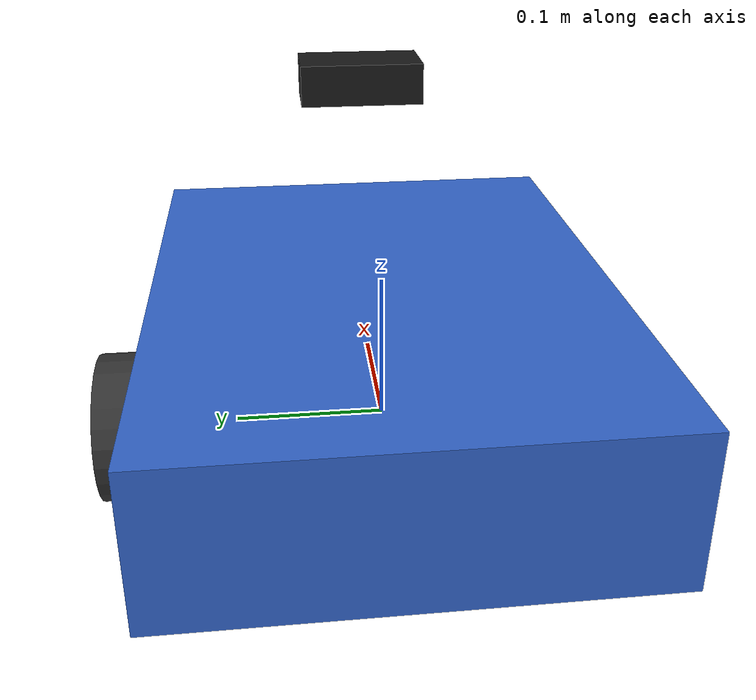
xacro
<?xml version="1.0"?>
<robot name="my_robot" xmlns:xacro="http://ros.org/wiki/xacro">

  <!-- ── Base link ─────────────────────────────────── -->
  <link name="base_footprint"/>

  <joint name="base_joint" type="fixed">
    <parent link="base_footprint"/>
    <child link="base_link"/>
    <origin xyz="0 0 0.05"/>
  </joint>

  <link name="base_link">
    <visual>
      <geometry><box size="0.4 0.3 0.1"/></geometry>
      <material name="blue"><color rgba="0.2 0.4 0.8 1"/></material>
    </visual>
    <collision>
      <geometry><box size="0.4 0.3 0.1"/></geometry>
    </collision>
    <inertial>
      <mass value="5.0"/>
      <inertia ixx="0.05" iyy="0.05" izz="0.08" ixy="0" ixz="0" iyz="0"/>
    </inertial>
  </link>

  <!-- ── Camera link ───────────────────────────────── -->
  <!-- mounted 15 cm forward, 15 cm above base_link center -->
  <joint name="camera_joint" type="fixed">
    <parent link="base_link"/>
    <child link="camera_link"/>
    <origin xyz="0.15 0 0.15" rpy="0 0 0"/>
  </joint>

  <link name="camera_link">
    <visual>
      <geometry><box size="0.05 0.09 0.03"/></geometry>
      <material name="black"><color rgba="0.1 0.1 0.1 1"/></material>
    </visual>
    <collision>
      <geometry><box size="0.05 0.09 0.03"/></geometry>
    </collision>
    <inertial>
      <mass value="0.1"/>
      <inertia ixx="0.001" iyy="0.001" izz="0.001" ixy="0" ixz="0" iyz="0"/>
    </inertial>
  </link>

  <!-- optical frame: Z-forward convention for Gazebo camera plugin -->
  <joint name="camera_optical_joint" type="fixed">
    <parent link="camera_link"/>
    <child link="camera_optical_link"/>
    <origin xyz="0 0 0" rpy="-1.5708 0 -1.5708"/>
  </joint>
  <link name="camera_optical_link"/>

  <!-- ── Gazebo depth camera plugin ───────────────── -->
  <gazebo reference="camera_link">
    <sensor name="depth_camera" type="depth">
      <update_rate>30</update_rate>
      <camera>
        <horizontal_fov>1.5</horizontal_fov>
        <image>
          <width>640</width>
          <height>480</height>
          <format>R8G8B8</format>
        </image>
        <clip>
          <near>0.2</near>
          <far>10.0</far>
        </clip>
      </camera>
      <plugin name="depth_camera_plugin" filename="libgazebo_ros_camera.so">
        <ros>
          <remapping>~/image_raw:=/camera/color/image_raw</remapping>
          <remapping>~/depth/image_raw:=/camera/depth/image_raw</remapping>
          <remapping>~/points:=/camera/depth/points</remapping>
          <remapping>~/camera_info:=/camera/color/camera_info</remapping>
          <remapping>~/depth/camera_info:=/camera/depth/camera_info</remapping>
        </ros>
        <frame_name>camera_optical_link</frame_name>
        <min_depth>0.2</min_depth>
        <max_depth>10.0</max_depth>
      </plugin>
    </sensor>
  </gazebo>

  <!-- ── Differential drive plugin ────────────────── -->
  <gazebo>
    <plugin name="diff_drive" filename="libgazebo_ros_diff_drive.so">
      <ros>
        <remapping>cmd_vel:=/cmd_vel</remapping>
        <remapping>odom:=/odom</remapping>
      </ros>
      <left_joint>left_wheel_joint</left_joint>
      <right_joint>right_wheel_joint</right_joint>
      <wheel_separation>0.3</wheel_separation>
      <wheel_diameter>0.1</wheel_diameter>
      <max_wheel_torque>20</max_wheel_torque>
      <max_wheel_acceleration>2.0</max_wheel_acceleration>
      <publish_odom>true</publish_odom>
      <publish_odom_tf>true</publish_odom_tf>
      <publish_wheel_tf>false</publish_wheel_tf>
      <odometry_frame>odom</odometry_frame>
      <robot_base_frame>base_footprint</robot_base_frame>
    </plugin>
  </gazebo>

  <!-- ── Left wheel ────────────────────────────────── -->
  <link name="left_wheel">
    <visual>
      <geometry><cylinder radius="0.05" length="0.04"/></geometry>
      <material name="dark"><color rgba="0.2 0.2 0.2 1"/></material>
    </visual>
    <collision>
      <geometry><cylinder radius="0.05" length="0.04"/></geometry>
    </collision>
    <inertial>
      <mass value="0.5"/>
      <inertia ixx="0.003" iyy="0.003" izz="0.005" ixy="0" ixz="0" iyz="0"/>
    </inertial>
  </link>
  <joint name="left_wheel_joint" type="continuous">
    <parent link="base_link"/>
    <child link="left_wheel"/>
    <origin xyz="0 0.17 -0.05" rpy="-1.5708 0 0"/>
    <axis xyz="0 0 1"/>
  </joint>

  <!-- ── Right wheel ───────────────────────────────── -->
  <link name="right_wheel">
    <visual>
      <geometry><cylinder radius="0.05" length="0.04"/></geometry>
      <material name="dark2"><color rgba="0.2 0.2 0.2 1"/></material>
    </visual>
    <collision>
      <geometry><cylinder radius="0.05" length="0.04"/></geometry>
    </collision>
    <inertial>
      <mass value="0.5"/>
      <inertia ixx="0.003" iyy="0.003" izz="0.005" ixy="0" ixz="0" iyz="0"/>
    </inertial>
  </link>
  <joint name="right_wheel_joint" type="continuous">
    <parent link="base_link"/>
    <child link="right_wheel"/>
    <origin xyz="0 -0.17 -0.05" rpy="-1.5708 0 0"/>
    <axis xyz="0 0 1"/>
  </joint>

  <!-- ── Caster (front, passive) ───────────────────── -->
  <link name="caster">
    <visual><geometry><sphere radius="0.025"/></geometry></visual>
    <collision><geometry><sphere radius="0.025"/></geometry></collision>
    <inertial>
      <mass value="0.1"/>
      <inertia ixx="0.0001" iyy="0.0001" izz="0.0001" ixy="0" ixz="0" iyz="0"/>
    </inertial>
  </link>
  <joint name="caster_joint" type="fixed">
    <parent link="base_link"/>
    <child link="caster"/>
    <origin xyz="0.15 0 -0.075"/>
  </joint>
  <gazebo reference="caster">
    <mu1>0.0</mu1>
    <mu2>0.0</mu2>
  </gazebo>

</robot>
